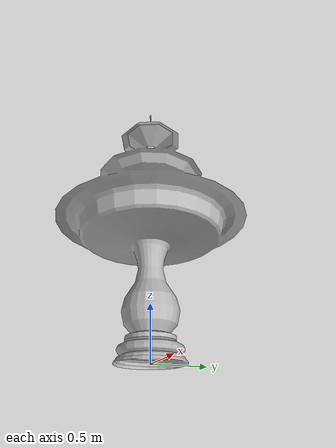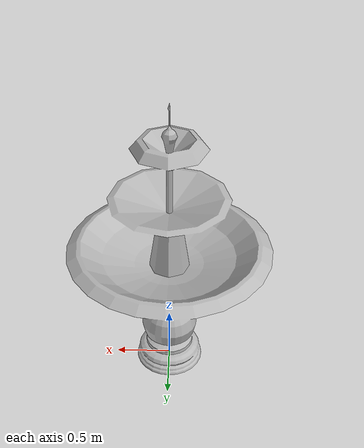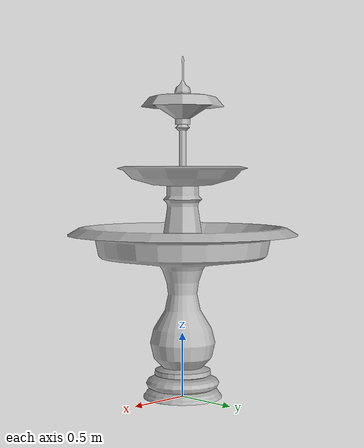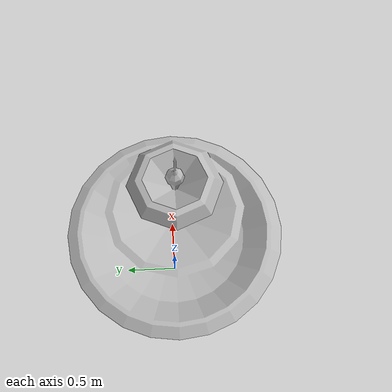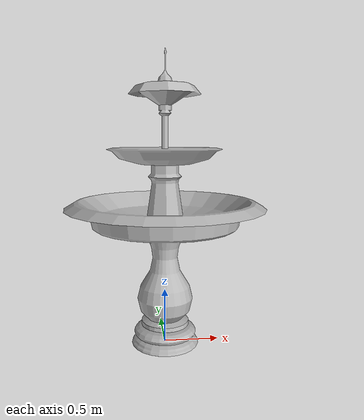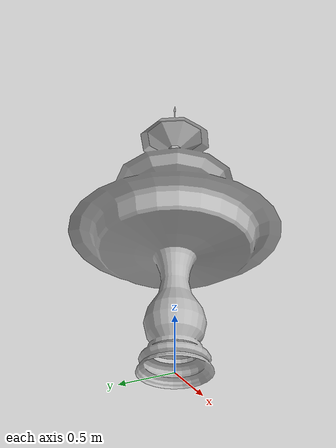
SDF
<?xml version="1.0" ?>
<sdf version="1.6">
  <model name="fountain">
    <static>true</static>
    <link name="link">
      <collision name="collision">
        <geometry>
          <mesh>
            <uri>model://fountain/meshes/fountain.dae</uri>
          </mesh>
        </geometry>
      </collision>
      <visual name="visual">
        <geometry>
          <mesh>
            <uri>model://fountain/meshes/fountain.dae</uri>
          </mesh>
        </geometry>
      </visual>
    </link>
  </model>
</sdf>
